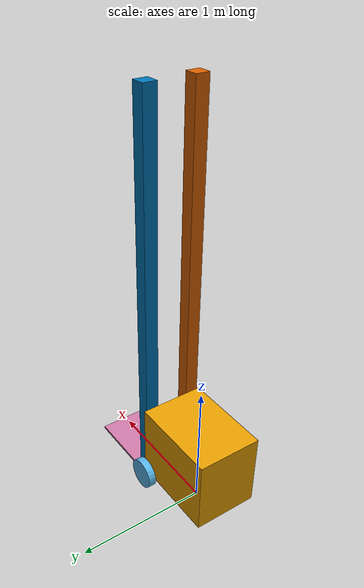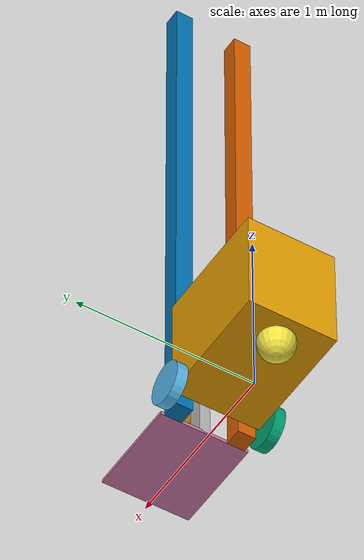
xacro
<?xml version="1.0"?>

<robot name="forklift"  xmlns:xacro="http://www.ros.org/wiki/xacro">
<xacro:include filename="$(find my_urdf)/urdf/joints_links.xacro"/>
<xacro:include filename="$(find my_urdf)/urdf/forklift.plugin.xacro"/>

<!-- chassis properties-->
<xacro:property name="cx" value="0.7"/>
<xacro:property name="cy" value="0.5"/>
<xacro:property name="cz" value="0.6"/>
<xacro:property name="cm" value="30"/>

<!-- wheel properties-->
<xacro:property name="wh" value="0.06"/>
<xacro:property name="wr" value="0.12"/>
<xacro:property name="wm" value="0.7"/>
<!-- rod properties-->
<xacro:property name="rx" value="0.1"/>
<xacro:property name="ry" value="0.1"/>
<xacro:property name="rz" value="3.0"/>
<xacro:property name="rm" value="5"/>

<!-- lift properties-->
<xacro:property name="lx" value="0.55"/>
<xacro:property name="ly" value="0.5"/>
<xacro:property name="lz" value="0.02"/>
<xacro:property name="lm" value="2"/>

<!-- pull_mech_v properties-->
<xacro:property name="vpx" value="0.08"/>
<xacro:property name="vpy" value="0.06"/>
<xacro:property name="vpz" value="0.24"/>
<xacro:property name="vpm" value="0.5"/>

<!-- pull_mech_h properties-->
<xacro:property name="hph" value="0.15"/>
<xacro:property name="hpr" value="0.03"/>
<xacro:property name="hpm" value="0.5"/>

<!-- load properties-->
<xacro:property name="lox" value="0.55"/>
<xacro:property name="loy" value="0.5"/>
<xacro:property name="loz" value="0.4"/>
<xacro:property name="lom" value="5"/>

<!-- lazer_scanner properties-->
<xacro:property name="lsh" value="0.1"/>
<xacro:property name="lsr" value="0.06"/>
<xacro:property name="lsm" value="0.7"/>

<m_box name="chassis" size="${cx} ${cy} ${cz}" origin_rpy="0.0 0.0 0.0" origin_xyz="0.0 0.0 0.42"
        mass="${cm}"
        ixx="${cm*(cz*cz+cy*cy)/12}" ixy="0" ixz="0"
        iyy="${cm*(cx*cx+cz*cz)/12}" iyz="0"
        izz="${cm*(cy*cy+cx*cx)/12}"/>

<m_cylinder name="rf_wheel" length="${wh}" radius="${wr}" origin_rpy="1.57 0.0 0.0" origin_xyz="0.0 0.0 0.0"
             mass="${wm}"
              ixx="${wm*(3*wr*wr+wh*wh)/12}" ixy="0" ixz="0"
              iyy="${wm*(3*wr*wr+wh*wh)/12}" iyz="0"
              izz="${(wm*wr*wr)/2}"/>

    <c_joint name="chassis_to_rf_wheel" type="continuous" origin_xyz="0.32 0.28 0.12" origin_rpy="0.0 0.0 0.0"
         axis_xyz="0 1 0" parent="chassis" child="rf_wheel" />

    <transmission name="trans_chassis_to_rf_wheel">
      <type>transmission_interface/SimpleTransmission</type>
      <joint name="chassis_to_rf_wheel">
        <hardwareInterface>hardware_interface/VelocityJointInterface</hardwareInterface>
      </joint>
      <actuator name="motor_chassis_to_rf_wheel">
        <hardwareInterface>hardware_interface/EffortJointInterface</hardwareInterface>
        <mechanicalReduction>1</mechanicalReduction>
      </actuator>
    </transmission>

<m_cylinder name="lf_wheel" length="${wh}" radius="${wr}" origin_rpy="1.57 0.0 0.0" origin_xyz="0.0 0.0 0.0"
             mass="${wm}"
              ixx="${wm*(3*wr*wr+wh*wh)/12}" ixy="0" ixz="0"
              iyy="${wm*(3*wr*wr+wh*wh)/12}" iyz="0"
              izz="${(wm*wr*wr)/2}"/>

    <c_joint name="chassis_to_lf_wheel" type="continuous" origin_xyz="0.32 -0.28 0.12" origin_rpy="0.0 0.0 0.0"
         axis_xyz="0 1 0" parent="chassis" child="lf_wheel"/>

    <transmission name="trans_chassis_to_lf_wheel">
      <type>transmission_interface/SimpleTransmission</type>
      <joint name="chassis_to_lf_wheel">
        <hardwareInterface>hardware_interface/VelocityJointInterface</hardwareInterface>
      </joint>
      <actuator name="motor_chassis_to_lf_wheel">
        <hardwareInterface>hardware_interface/EffortJointInterface</hardwareInterface>
        <mechanicalReduction>1</mechanicalReduction>
      </actuator>
    </transmission>

<link name="caster">
        <inertial>
        <mass value="0.5" />
        <origin rpy="0.0 0.0 0.0" xyz="0.0 0.0 0.0" />
        <inertia ixx="0.001" ixy="0.0" ixz="0.0" iyy="0.001" iyz="0.0" izz="0.001" />
        </inertial>
        <collision>
        <origin rpy="0.0 0.0 0.0" xyz="0.0 0.0 0.0" />
        <geometry>
          <sphere radius="0.1" />
        </geometry>
      </collision>
        <visual>
            <geometry>
                <sphere radius="0.1"/>
            </geometry>
        </visual>
    </link>

   <f_joint name="chassis_to_caster" type="fixed" origin_xyz="-0.2 0.0 0.1" origin_rpy="0.0 0.0 0.0"
          parent="chassis" child="caster"/>

    <m_box name="r_rod" size="${rx} ${ry} ${rz}" origin_rpy="0.0 0.0 0.0" origin_xyz="0.0 0.0 1.5"
        mass="${rm}"
        ixx="${rm*(rz*rz+ry*ry)/12}" ixy="0" ixz="0"
        iyy="${rm*(rx*rx+rz*rz)/12}" iyz="0"
        izz="${rm*(ry*ry+rx*rx)/12}"/>

    <f_joint name="chassis_to_r_rod" type="fixed" origin_xyz="0.4 0.18 0.05" origin_rpy="0.0 0.0 0.0"
          parent="chassis" child="r_rod"/>

     <m_box name="l_rod" size="${rx} ${ry} ${rz}" origin_rpy="0.0 0.0 0.0" origin_xyz="0.0 0.0 1.5"
        mass="${rm}"
        ixx="${rm*(rz*rz+ry*ry)/12}" ixy="0" ixz="0"
        iyy="${rm*(rx*rx+rz*rz)/12}" iyz="0"
        izz="${rm*(ry*ry+rx*rx)/12}"/>

    <f_joint name="chassis_to_l_rod" type="fixed" origin_xyz="0.4 -0.18 0.05" origin_rpy="0.0 0.0 0.0"
          parent="chassis" child="l_rod"/>

    <m_box name="lift" size="${lx} ${ly} ${lz}" origin_rpy="0.0 0.0 0.0" origin_xyz="0.0 0.0 0.0"
        mass="${lm}"
        ixx="${lm*(lz*lz+ly*ly)/12}" ixy="0" ixz="0"
        iyy="${lm*(lx*lx+lz*lz)/12}" iyz="0"
        izz="${lm*(ly*ly+lx*lx)/12}"/>

    <m_joint name="chassis_to_lift" type="prismatic" origin_xyz="${(rx+lx/2+cx/2)} 0 0.06" origin_rpy="0.0 0.0 0.0"
         axis_xyz="0 0 1" parent="chassis" child="lift" limit_e="1000.0" limit_v="0.5"
         limit_l="0" limit_u="2.5"/>

    <transmission name="trans_chassis_to_lift">
      <type>transmission_interface/SimpleTransmission</type>
      <joint name="chassis_to_lift">
        <hardwareInterface>hardware_interface/EffortJointInterface</hardwareInterface>
      </joint>
      <actuator name="motor_chassis_to_lift">
        <hardwareInterface>hardware_interface/EffortJointInterface</hardwareInterface>
        <mechanicalReduction>1</mechanicalReduction>
      </actuator>
    </transmission>

<m_box name="pull_mech_v" size="${vpx} ${vpy} ${vpz}" origin_rpy="0.0 0.0 0.0" origin_xyz="0.0 0.0 0.12"
        mass="${vpm}"
        ixx="${vpm*(vpz*vpz+vpy*vpy)/12}" ixy="0" ixz="0"
        iyy="${lm*(vpx*vpx+vpz*vpz)/12}" iyz="0"
        izz="${lm*(vpy*vpy+vpx*vpx)/12}"/>

    <m_joint name="lift_to_pull_mech_v" type="prismatic" origin_xyz="${-(lx/2)+(vpx/2)} 0.0 0.0" origin_rpy="0.0 0.0 0.0"
         axis_xyz="1 0 0" parent="lift" child="pull_mech_v" limit_e="1000.0" limit_v="2"
         limit_l="0" limit_u="${0.6*lx}"/>

    <transmission name="trans_lift_to_pull_mech_v">
      <type>transmission_interface/SimpleTransmission</type>
      <joint name="lift_to_pull_mech_v">
        <hardwareInterface>hardware_interface/EffortJointInterface</hardwareInterface>
      </joint>
      <actuator name="motor_lift_to_pull_mech_v">
        <hardwareInterface>hardware_interface/EffortJointInterface</hardwareInterface>
        <mechanicalReduction>1</mechanicalReduction>
      </actuator>
    </transmission>

    <m_cylinder name="pull_mech_h" length="${hph}" radius="${hpr}" origin_rpy="0.0 1.57 0.0" origin_xyz="${vpx/2} 0.0 0.0"
             mass="${hpm}"
              ixx="${hpm*(3*hpr*hpr+hph*hph)/12}" ixy="0" ixz="0"
              iyy="${hpm*(3*hpr*hpr+hph*hph)/12}" iyz="0"
              izz="${(hpm*hpr*hpr)/2}"/>

    <f_joint name="pull_mech_v_to_pull_mech_h" type="fixed" origin_xyz="0.0 0.0 0.2" origin_rpy="0.0 0.0 0.0"
             parent="pull_mech_v" child="pull_mech_h"/>

    <gazebo>
    <plugin name="gazebo_ros_plugin" filename="libgazebo_ros_control.so">
    <robotSimType>gazebo_ros_control/DefaultRobotHWSim</robotSimType>
    <legacyModeNS>true</legacyModeNS>
    </plugin>
  </gazebo>

</robot>

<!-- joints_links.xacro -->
<robot xmlns:xacro="http://www.ros.org/wiki/xacro">

 <xacro:macro name="m_joint" params="name type axis_xyz origin_rpy origin_xyz parent child limit_e limit_l limit_u limit_v">
    <joint name="${name}" type="${type}">
      <axis xyz="${axis_xyz}" />
      <limit effort="${limit_e}" lower="${limit_l}" upper="${limit_u}" velocity="${limit_v}" />
      <origin rpy="${origin_rpy}" xyz="${origin_xyz}" />
      <parent link="${parent}" />
      <child link="${child}" />
    </joint>
    </xacro:macro>

  <xacro:macro name="f_joint" params="name type origin_rpy origin_xyz parent child ">
    <joint name="${name}" type="${type}">
        <origin xyz="${origin_xyz}" rpy="${origin_rpy}"/>
        <parent link="${parent}"/>
        <child link="${child}"/>
    </joint>
  </xacro:macro>

  <xacro:macro name="c_joint" params="name type origin_rpy origin_xyz parent child axis_xyz ">
    <joint name="${name}" type="${type}">
        <axis xyz="${axis_xyz}"/>
        <origin xyz="${origin_xyz}" rpy="${origin_rpy}"/>
        <parent link="${parent}"/>
        <child link="${child}"/>
    </joint>
  </xacro:macro>

  <xacro:macro name="m_box" params="name origin_xyz origin_rpy size mass ixx ixy ixz iyy iyz izz">
    <link name="${name}">
      <inertial>
        <mass value="${mass}" />
        <origin rpy="${origin_rpy}" xyz="${origin_xyz}" />
        <inertia ixx="${ixx}" ixy="${ixy}" ixz="${ixz}" iyy="${iyy}" iyz="${iyz}" izz="${izz}" />
      </inertial>
      <collision>
        <origin rpy="${origin_rpy}" xyz="${origin_xyz}" />
        <geometry>
          <box size="${size}" />
        </geometry>
      </collision>
      <visual>
        <origin rpy="${origin_rpy}" xyz="${origin_xyz}" />
        <geometry>
          <box size="${size}" />
        </geometry>
      </visual>
    </link>
  </xacro:macro>

<xacro:macro name="m_cylinder" params="name origin_xyz origin_rpy radius length mass ixx ixy ixz iyy iyz izz">
 <link name="${name}">
      <inertial>
        <mass value="${mass}" />
        <origin rpy="${origin_rpy}" xyz="${origin_xyz}" />
        <inertia ixx="${ixx}" ixy="${ixy}" ixz="${ixz}" iyy="${iyy}" iyz="${iyz}" izz="${izz}" />
      </inertial>
      <collision>
        <origin rpy="${origin_rpy}" xyz="${origin_xyz}" />
        <geometry>
          <cylinder radius="${radius}" length="${length}" />
        </geometry>
      </collision>
      <visual>
        <origin rpy="${origin_rpy}" xyz="${origin_xyz}" />
        <geometry>
          <cylinder radius="${radius}" length="${length}" />
        </geometry>
      </visual>
    </link>
 </xacro:macro>
</robot>
